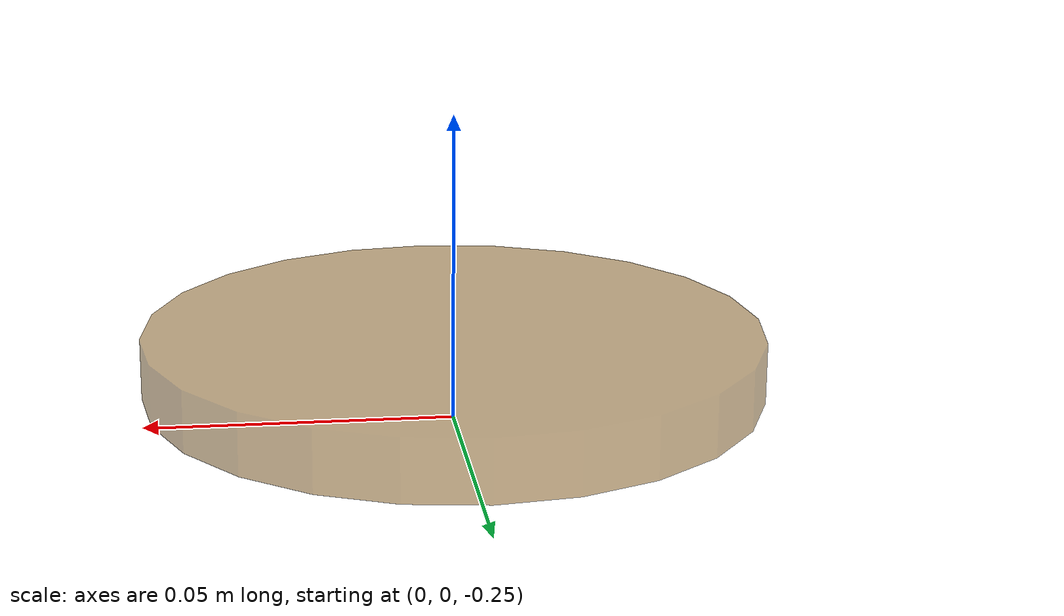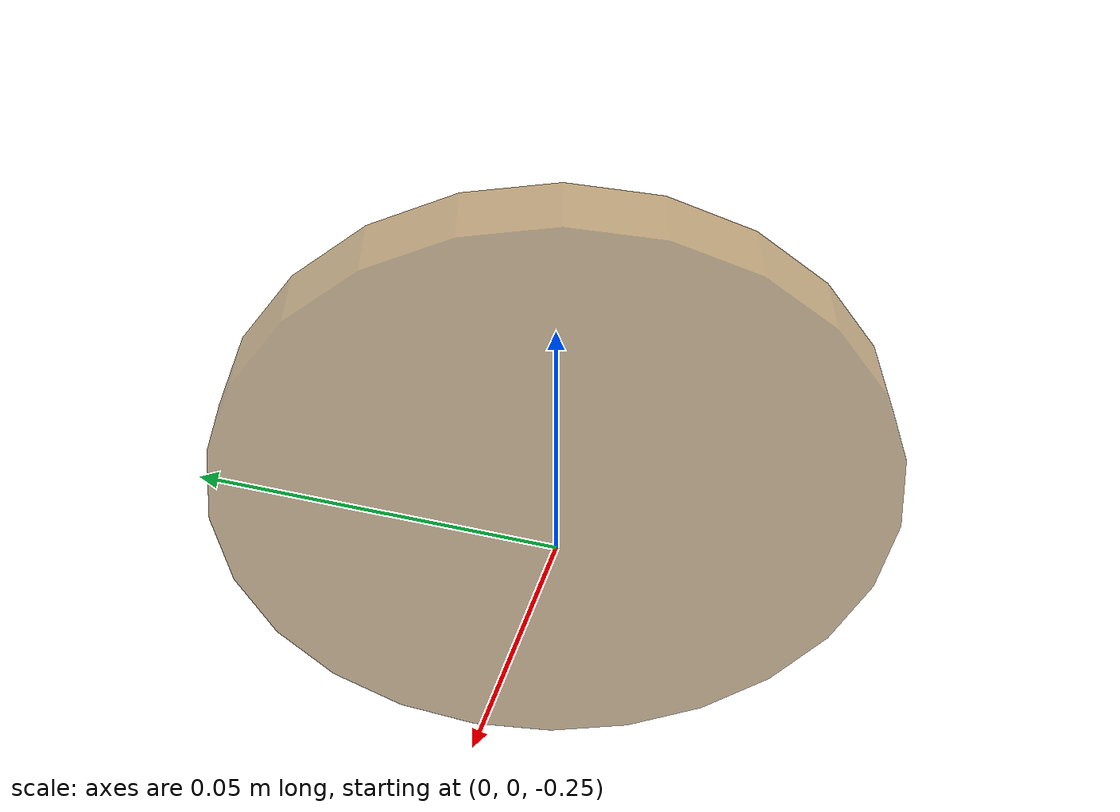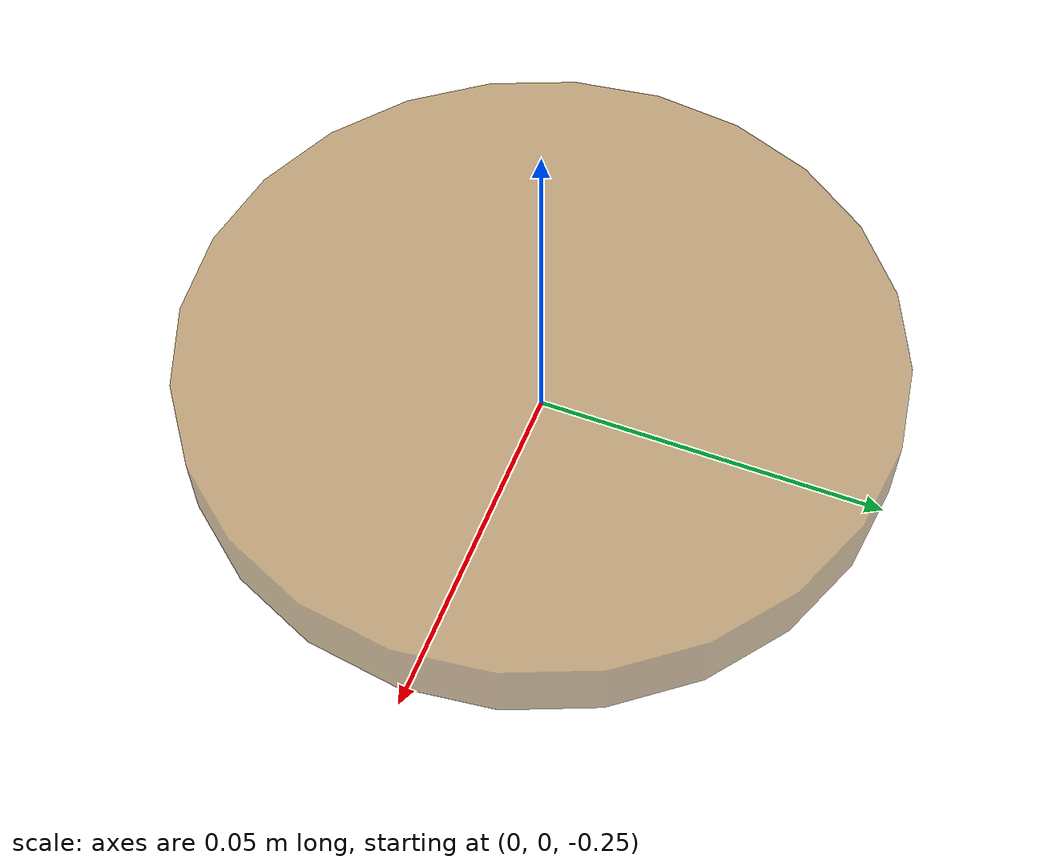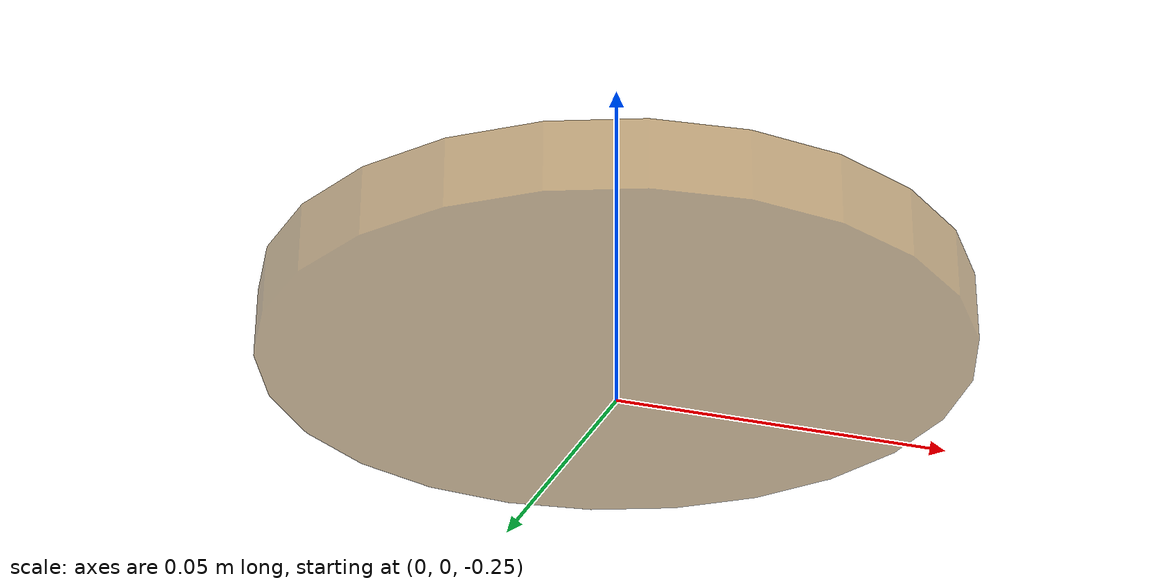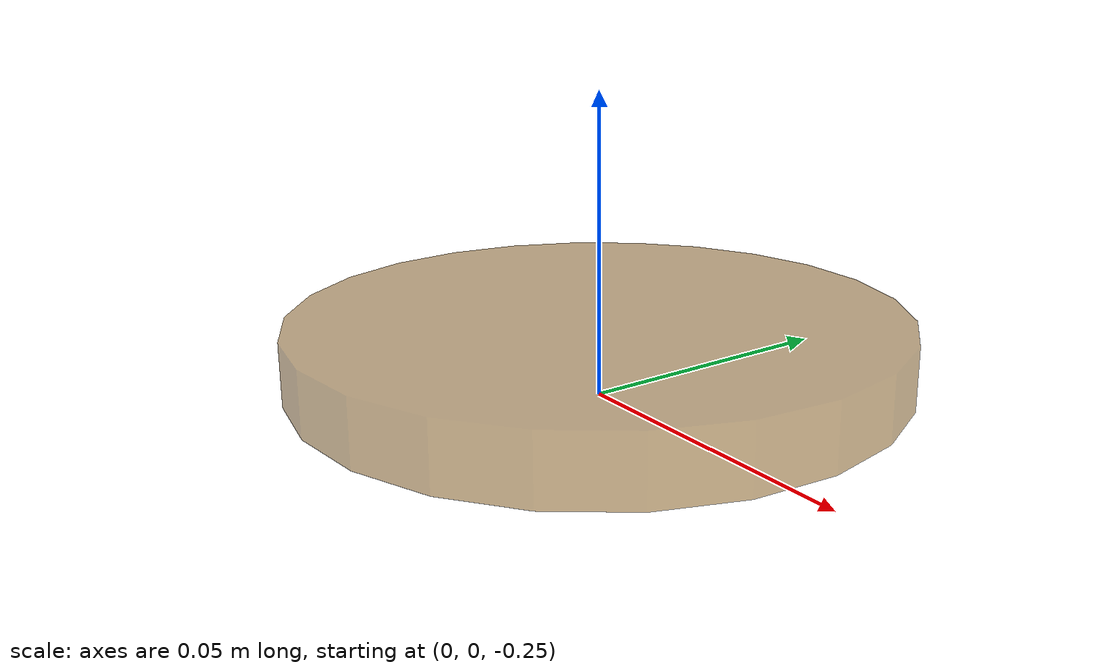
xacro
<robot name="my_base" xmlns:xacro="http://www.ros.org/wiki/xacro">

    <xacro:property name="PI" value="3.1415926"/>
    <xacro:property name="base_link_radius" value="0.05" />
    <xacro:property name="base_link_length" value="0.01" />
    <xacro:property name="base_link_m" value="0.00001" />

    <link name="lidar_link" />

    <link name="platform_base">
      <visual>
        <geometry>
          <cylinder radius="${base_link_radius}" length="${base_link_length}" />
        </geometry>
        <origin xyz="0 0 -0.25" rpy="0 0 0" />
        <material name="yellow">
          <color rgba="0.5 0.3 0.0 0.5" />
        </material>
      </visual>
      <collision>
        <geometry>
          <cylinder radius="${base_link_radius}" length="${base_link_length}" />
        </geometry>
        <origin xyz="0 0 0" rpy="0 0 0" />
      </collision>
      <xacro:cylinder_inertial_matrix m="${base_link_m}" r="${base_link_radius}" h="${base_link_length}" />
    </link>

    <joint name="base_link2base_footprint" type="fixed">
      <parent link="lidar_link" />
      <child link="platform_base" />
      <origin xyz="0 0 0.01" rpy="0 0 0"/>
    </joint>

    <gazebo reference="platform_base">
        <material>Gazebo/Green</material>
    </gazebo>

</robot>
